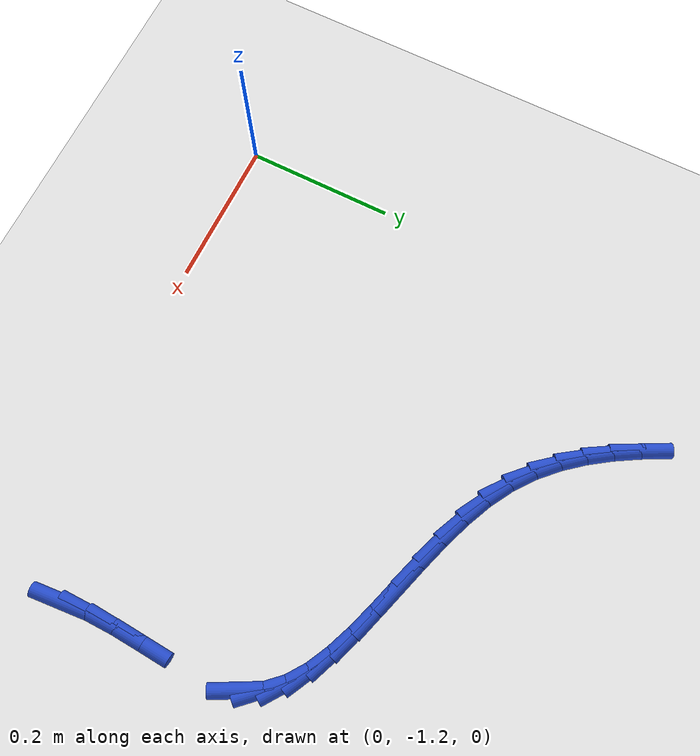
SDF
<sdf version="1.6">
 <world name="default">
  <model name="ground_plane">
   <static>1</static>
   <link name="link">
    <collision name="collision">
     <geometry><plane><normal>0 0 1</normal><size>100 100</size></plane></geometry>
     <surface><friction><ode><mu>100</mu><mu2>50</mu2></ode></friction></surface>
    </collision>
    <visual name="visual">
     <cast_shadows>0</cast_shadows>
     <geometry><plane><normal>0 0 1</normal><size>100 100</size></plane></geometry>
     <material>
      <script><uri>file://media/materials/scripts/gazebo.material</uri><name>Gazebo/WhiteGlow</name></script>
     </material>
    </visual>
   </link>
  </model>
  <model name="line">
   <link name="link_219">
    <pose>0.6480202369446071 -1.120046495340091 0.01 0 1.57 -1.4898753483894547</pose>
    <collision name="collision">
     <geometry><cylinder><radius>0.01</radius><length>0.08</length></cylinder></geometry>
    </collision>
    <visual name="visual">
     <material>
      <script><name>Gazebo/Blue</name><uri>file://media/materials/scripts/gazebo.material</uri></script>
     </material>
     <geometry><cylinder><radius>0.01</radius><length>0.08</length></cylinder></geometry>
    </visual>
   </link>
   <link name="link_220">
    <pose>0.6450464917498266 -1.0833779883542085 0.01 0 1.57 1.5566361217416198</pose>
    <collision name="collision">
     <geometry><cylinder><radius>0.01</radius><length>0.08</length></cylinder></geometry>
    </collision>
    <visual name="visual">
     <material>
      <script><name>Gazebo/Blue</name><uri>file://media/materials/scripts/gazebo.material</uri></script>
     </material>
     <geometry><cylinder><radius>0.01</radius><length>0.08</length></cylinder></geometry>
    </visual>
   </link>
   <link name="link_221">
    <pose>0.6455765496264583 -1.0459475665055395 0.01 0 1.57 1.5072187864721578</pose>
    <collision name="collision">
     <geometry><cylinder><radius>0.01</radius><length>0.08</length></cylinder></geometry>
    </collision>
    <visual name="visual">
     <material>
      <script><name>Gazebo/Blue</name><uri>file://media/materials/scripts/gazebo.material</uri></script>
     </material>
     <geometry><cylinder><radius>0.01</radius><length>0.08</length></cylinder></geometry>
    </visual>
   </link>
   <link name="link_222">
    <pose>0.6479552947387023 -1.008583126305057 0.01 0 1.57 1.5003816256419416</pose>
    <collision name="collision">
     <geometry><cylinder><radius>0.01</radius><length>0.08</length></cylinder></geometry>
    </collision>
    <visual name="visual">
     <material>
      <script><name>Gazebo/Blue</name><uri>file://media/materials/scripts/gazebo.material</uri></script>
     </material>
     <geometry><cylinder><radius>0.01</radius><length>0.08</length></cylinder></geometry>
    </visual>
   </link>
   <link name="link_226">
    <pose>0.6428548308278135 -0.8763431122044664 0.01 0 1.57 -1.0847430881206144</pose>
    <collision name="collision">
     <geometry><cylinder><radius>0.01</radius><length>0.08</length></cylinder></geometry>
    </collision>
    <visual name="visual">
     <material>
      <script><name>Gazebo/Blue</name><uri>file://media/materials/scripts/gazebo.material</uri></script>
     </material>
     <geometry><cylinder><radius>0.01</radius><length>0.08</length></cylinder></geometry>
    </visual>
   </link>
   <link name="link_227">
    <pose>0.6298024440989133 -0.851638083381323 0.01 0 1.57 -0.8213113863532941</pose>
    <collision name="collision">
     <geometry><cylinder><radius>0.01</radius><length>0.08</length></cylinder></geometry>
    </collision>
    <visual name="visual">
     <material>
      <script><name>Gazebo/Blue</name><uri>file://media/materials/scripts/gazebo.material</uri></script>
     </material>
     <geometry><cylinder><radius>0.01</radius><length>0.08</length></cylinder></geometry>
    </visual>
   </link>
   <link name="link_228">
    <pose>0.6104992145810134 -0.8308960819460689 0.01 0 1.57 -0.6159634397198903</pose>
    <collision name="collision">
     <geometry><cylinder><radius>0.01</radius><length>0.08</length></cylinder></geometry>
    </collision>
    <visual name="visual">
     <material>
      <script><name>Gazebo/Blue</name><uri>file://media/materials/scripts/gazebo.material</uri></script>
     </material>
     <geometry><cylinder><radius>0.01</radius><length>0.08</length></cylinder></geometry>
    </visual>
   </link>
   <link name="link_229">
    <pose>0.5858500865826453 -0.8134486249440985 0.01 0 1.57 -0.4715366325801302</pose>
    <collision name="collision">
     <geometry><cylinder><radius>0.01</radius><length>0.08</length></cylinder></geometry>
    </collision>
    <visual name="visual">
     <material>
      <script><name>Gazebo/Blue</name><uri>file://media/materials/scripts/gazebo.material</uri></script>
     </material>
     <geometry><cylinder><radius>0.01</radius><length>0.08</length></cylinder></geometry>
    </visual>
   </link>
   <link name="link_230">
    <pose>0.5567706521726922 -0.7986210057037674 0.01 0 1.57 -0.37639558990648</pose>
    <collision name="collision">
     <geometry><cylinder><radius>0.01</radius><length>0.08</length></cylinder></geometry>
    </collision>
    <visual name="visual">
     <material>
      <script><name>Gazebo/Blue</name><uri>file://media/materials/scripts/gazebo.material</uri></script>
     </material>
     <geometry><cylinder><radius>0.01</radius><length>0.08</length></cylinder></geometry>
    </visual>
   </link>
   <link name="link_231">
    <pose>0.5241765034200356 -0.7857385175534303 0.01 0 1.57 -0.3187035964061173</pose>
    <collision name="collision">
     <geometry><cylinder><radius>0.01</radius><length>0.08</length></cylinder></geometry>
    </collision>
    <visual name="visual">
     <material>
      <script><name>Gazebo/Blue</name><uri>file://media/materials/scripts/gazebo.material</uri></script>
     </material>
     <geometry><cylinder><radius>0.01</radius><length>0.08</length></cylinder></geometry>
    </visual>
   </link>
   <link name="link_232">
    <pose>0.48898323239355773 -0.7741264538214421 0.01 0 1.57 -0.2902947142950996</pose>
    <collision name="collision">
     <geometry><cylinder><radius>0.01</radius><length>0.08</length></cylinder></geometry>
    </collision>
    <visual name="visual">
     <material>
      <script><name>Gazebo/Blue</name><uri>file://media/materials/scripts/gazebo.material</uri></script>
     </material>
     <geometry><cylinder><radius>0.01</radius><length>0.08</length></cylinder></geometry>
    </visual>
   </link>
   <link name="link_233">
    <pose>0.4521064311621408 -0.7631101078361578 0.01 0 1.57 -0.2866223006939993</pose>
    <collision name="collision">
     <geometry><cylinder><radius>0.01</radius><length>0.08</length></cylinder></geometry>
    </collision>
    <visual name="visual">
     <material>
      <script><name>Gazebo/Blue</name><uri>file://media/materials/scripts/gazebo.material</uri></script>
     </material>
     <geometry><cylinder><radius>0.01</radius><length>0.08</length></cylinder></geometry>
    </visual>
   </link>
   <link name="link_234">
    <pose>0.41446169179466663 -0.7520147729259322 0.01 0 1.57 -0.30606911982462404</pose>
    <collision name="collision">
     <geometry><cylinder><radius>0.01</radius><length>0.08</length></cylinder></geometry>
    </collision>
    <visual name="visual">
     <material>
      <script><name>Gazebo/Blue</name><uri>file://media/materials/scripts/gazebo.material</uri></script>
     </material>
     <geometry><cylinder><radius>0.01</radius><length>0.08</length></cylinder></geometry>
    </visual>
   </link>
   <link name="link_235">
    <pose>0.3769646063600176 -0.7401657424191206 0.01 0 1.57 -0.34946810716357873</pose>
    <collision name="collision">
     <geometry><cylinder><radius>0.01</radius><length>0.08</length></cylinder></geometry>
    </collision>
    <visual name="visual">
     <material>
      <script><name>Gazebo/Blue</name><uri>file://media/materials/scripts/gazebo.material</uri></script>
     </material>
     <geometry><cylinder><radius>0.01</radius><length>0.08</length></cylinder></geometry>
    </visual>
   </link>
   <link name="link_236">
    <pose>0.34053076692707474 -0.7268883096440771 0.01 0 1.57 -0.4198519977406801</pose>
    <collision name="collision">
     <geometry><cylinder><radius>0.01</radius><length>0.08</length></cylinder></geometry>
    </collision>
    <visual name="visual">
     <material>
      <script><name>Gazebo/Blue</name><uri>file://media/materials/scripts/gazebo.material</uri></script>
     </material>
     <geometry><cylinder><radius>0.01</radius><length>0.08</length></cylinder></geometry>
    </visual>
   </link>
   <link name="link_237">
    <pose>0.3060757655647222 -0.7115077679291577 0.01 0 1.57 -0.5220760017425479</pose>
    <collision name="collision">
     <geometry><cylinder><radius>0.01</radius><length>0.08</length></cylinder></geometry>
    </collision>
    <visual name="visual">
     <material>
      <script><name>Gazebo/Blue</name><uri>file://media/materials/scripts/gazebo.material</uri></script>
     </material>
     <geometry><cylinder><radius>0.01</radius><length>0.08</length></cylinder></geometry>
    </visual>
   </link>
   <link name="link_238">
    <pose>0.2745145687173478 -0.6933499269480721 0.01 0 1.57 -0.649755567494987</pose>
    <collision name="collision">
     <geometry><cylinder><radius>0.01</radius><length>0.08</length></cylinder></geometry>
    </collision>
    <visual name="visual">
     <material>
      <script><name>Gazebo/Blue</name><uri>file://media/materials/scripts/gazebo.material</uri></script>
     </material>
     <geometry><cylinder><radius>0.01</radius><length>0.08</length></cylinder></geometry>
    </visual>
   </link>
   <link name="link_239">
    <pose>0.24643251008943787 -0.6720126514746132 0.01 0 1.57 -0.7714143954245902</pose>
    <collision name="collision">
     <geometry><cylinder><radius>0.01</radius><length>0.08</length></cylinder></geometry>
    </collision>
    <visual name="visual">
     <material>
      <script><name>Gazebo/Blue</name><uri>file://media/materials/scripts/gazebo.material</uri></script>
     </material>
     <geometry><cylinder><radius>0.01</radius><length>0.08</length></cylinder></geometry>
    </visual>
   </link>
   <link name="link_240">
    <pose>0.22154508318579116 -0.6478117096760662 0.01 0 1.57 -0.8777014448152901</pose>
    <collision name="collision">
     <geometry><cylinder><radius>0.01</radius><length>0.08</length></cylinder></geometry>
    </collision>
    <visual name="visual">
     <material>
      <script><name>Gazebo/Blue</name><uri>file://media/materials/scripts/gazebo.material</uri></script>
     </material>
     <geometry><cylinder><radius>0.01</radius><length>0.08</length></cylinder></geometry>
    </visual>
   </link>
   <link name="link_241">
    <pose>0.19942597356514724 -0.6211799077753688 0.01 0 1.57 -0.9662809836780385</pose>
    <collision name="collision">
     <geometry><cylinder><radius>0.01</radius><length>0.08</length></cylinder></geometry>
    </collision>
    <visual name="visual">
     <material>
      <script><name>Gazebo/Blue</name><uri>file://media/materials/scripts/gazebo.material</uri></script>
     </material>
     <geometry><cylinder><radius>0.01</radius><length>0.08</length></cylinder></geometry>
    </visual>
   </link>
   <link name="link_242">
    <pose>0.17964886678624548 -0.5925500519954586 0.01 0 1.57 -1.0366253756217099</pose>
    <collision name="collision">
     <geometry><cylinder><radius>0.01</radius><length>0.08</length></cylinder></geometry>
    </collision>
    <visual name="visual">
     <material>
      <script><name>Gazebo/Blue</name><uri>file://media/materials/scripts/gazebo.material</uri></script>
     </material>
     <geometry><cylinder><radius>0.01</radius><length>0.08</length></cylinder></geometry>
    </visual>
   </link>
   <link name="link_243">
    <pose>0.16178744840782563 -0.5623549485592736 0.01 0 1.57 -1.0892258574700295</pose>
    <collision name="collision">
     <geometry><cylinder><radius>0.01</radius><length>0.08</length></cylinder></geometry>
    </collision>
    <visual name="visual">
     <material>
      <script><name>Gazebo/Blue</name><uri>file://media/materials/scripts/gazebo.material</uri></script>
     </material>
     <geometry><cylinder><radius>0.01</radius><length>0.08</length></cylinder></geometry>
    </visual>
   </link>
  </model>
 </world>
</sdf>
